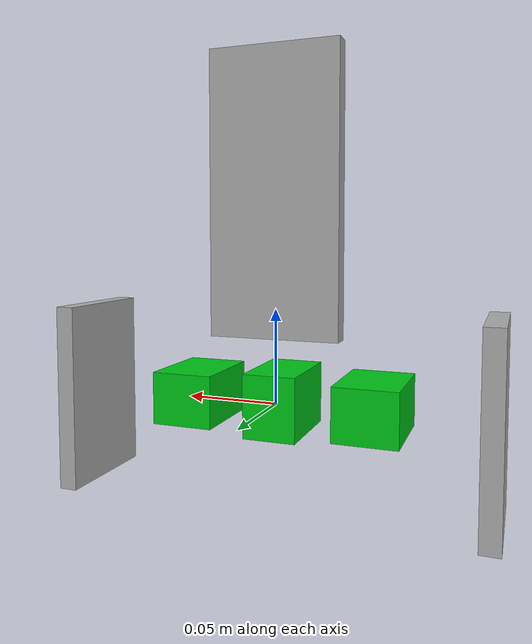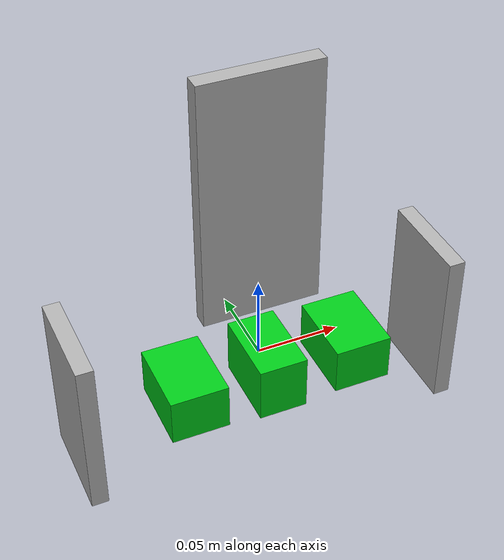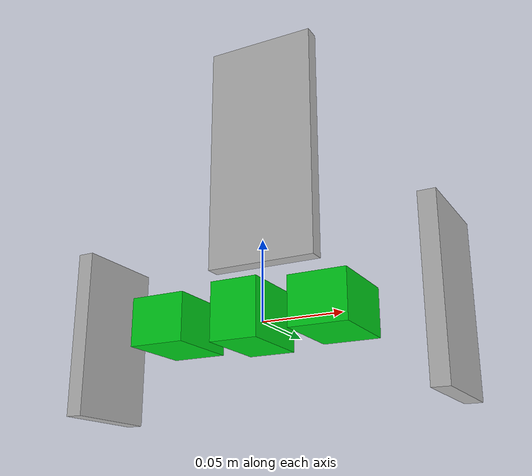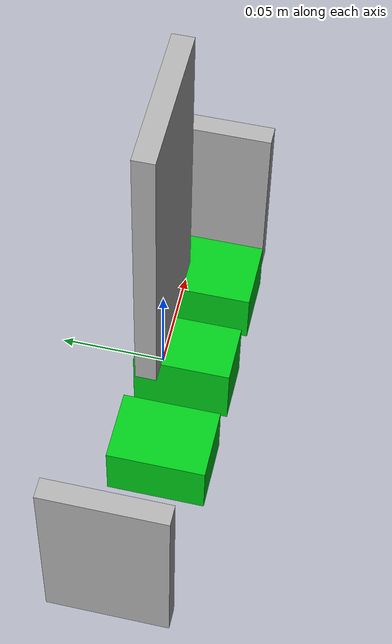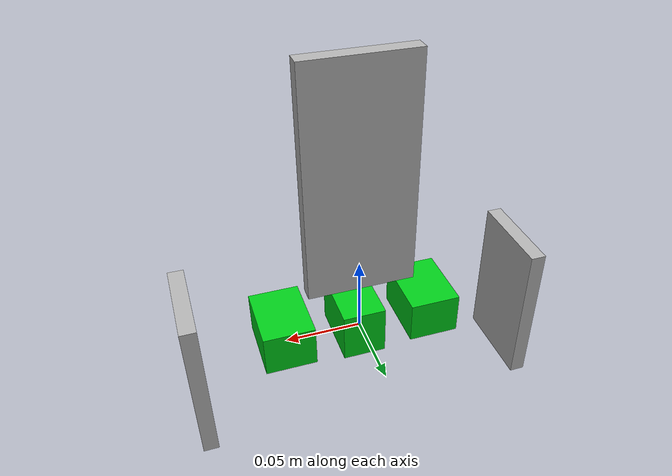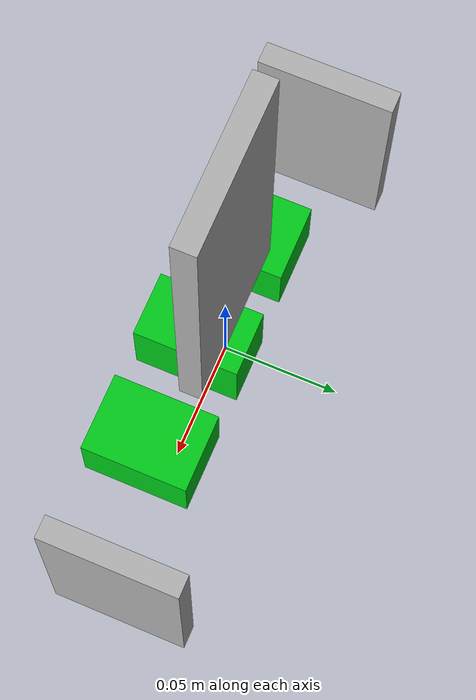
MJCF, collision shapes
<mujoco model="generic_bot_minimal">
  <compiler angle="radian" balanceinertia="true" />
  <asset>
    <mesh name="motor_mesh" file="/media/hrc/T7_UBUNTU_ONLY/Codesign_ChopstickBot_all_files/reference/xm430_motor/good_conversion_stl/XL-430_new_coordinate_on_axis.STL" scale="0.001000 0.001000 0.001000" />
    </asset>
  <worldbody>
    <body name="base_motor_link" pos="0.000000 0.000000 0.000000" quat="1.000000 0.000000 0.000000 0.000000">
      <freejoint name="floating_base" />
      <inertial pos="0.000000 -0.012000 0.000000" mass="0.065000" diaginertia="0.000017973854 0.000010661354 0.000016111875" />
      <geom type="mesh" mesh="motor_mesh" rgba="0.89804 0.91765 0.92941 1.0" contype="0" conaffinity="0" group="0" />
      <geom type="box" size="0.014250 0.023250 0.017000" pos="0.000000 -0.012000 0.000000" rgba="0.0 0.8 0.1 1.0" group="1" />
      <body name="l_leg_motor" pos="-0.050000 0.000000 0.000000" quat="0.707107 0.000000 -0.707107 0.000000">
        <inertial pos="0.000000 -0.012000 0.000000" mass="0.065000" diaginertia="0.000017973854 0.000010661354 0.000016111875" />
        <geom type="mesh" mesh="motor_mesh" rgba="0.89804 0.91765 0.92941 1.0" contype="0" conaffinity="0" group="0" />
        <geom type="box" size="0.014250 0.023250 0.017000" pos="0.000000 -0.012000 0.000000" rgba="0.0 0.8 0.1 1.0" group="1" />
        <body name="l_leg_motor_out" pos="0.000000 0.000000 0.000000" quat="1.000000 0.000000 0.000000 0.000000">
          <inertial pos="0.000000 0.000000 0.000000" mass="0.001000" diaginertia="0.000000016667 0.000000016667 0.000000016667" />
          <joint name="l_leg_motor_joint" type="hinge" axis="0.000000 0.000000 1.000000" pos="0.000000 0.000000 0.000000" range="-3.14159 3.14159" />
          <body name="l_end_effector" pos="0.000000 0.000000 0.060000" quat="1.000000 0.000000 0.000000 0.000000">
            <inertial pos="0.000000 0.000000 0.000000" mass="0.050000" diaginertia="0.000015416667 0.000042083333 0.000056666667" />
            <geom type="box" size="0.050000 0.030000 0.005000" pos="0.000000 0.000000 0.000000" rgba="0.7 0.7 0.7 1.0" group="0" />
            </body>
          </body>
        </body>
      <body name="r_leg_motor" pos="0.050000 0.000000 0.000000" quat="0.707107 0.000000 0.707107 0.000000">
        <inertial pos="0.000000 -0.012000 0.000000" mass="0.065000" diaginertia="0.000017973854 0.000010661354 0.000016111875" />
        <geom type="mesh" mesh="motor_mesh" rgba="0.89804 0.91765 0.92941 1.0" contype="0" conaffinity="0" group="0" />
        <geom type="box" size="0.014250 0.023250 0.017000" pos="0.000000 -0.012000 0.000000" rgba="0.0 0.8 0.1 1.0" group="1" />
        <body name="r_leg_motor_out" pos="0.000000 0.000000 0.000000" quat="1.000000 0.000000 0.000000 0.000000">
          <inertial pos="0.000000 0.000000 0.000000" mass="0.001000" diaginertia="0.000000016667 0.000000016667 0.000000016667" />
          <joint name="r_leg_motor_joint" type="hinge" axis="0.000000 0.000000 1.000000" pos="0.000000 0.000000 0.000000" range="-3.14159 3.14159" />
          <body name="r_end_effector" pos="-0.000000 0.000000 0.060000" quat="1.000000 0.000000 0.000000 0.000000">
            <inertial pos="0.000000 0.000000 0.000000" mass="0.050000" diaginertia="0.000015416667 0.000042083333 0.000056666667" />
            <geom type="box" size="0.050000 0.030000 0.005000" pos="0.000000 0.000000 0.000000" rgba="0.7 0.7 0.7 1.0" group="0" />
            </body>
          </body>
        </body>
      <body name="trunk_link" pos="0.000000 0.000000 0.110000" quat="1.000000 0.000000 0.000000 0.000000">
        <joint name="base_to_trunk" type="hinge" axis="0.000000 0.000000 1.000000" range="-3.14159 3.14159" />
        <inertial pos="0.000000 0.000000 0.000000" mass="0.300000" diaginertia="0.000565000000 0.000685000000 0.000125000000" />
        <geom type="box" size="0.035000 0.005000 0.075000" pos="0.000000 0.000000 0.000000" rgba="0.7 0.7 0.7 1.0" group="0" />
        </body>
      </body>
    </worldbody>
  </mujoco>
